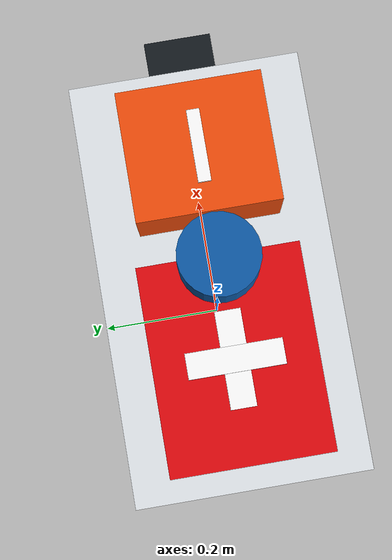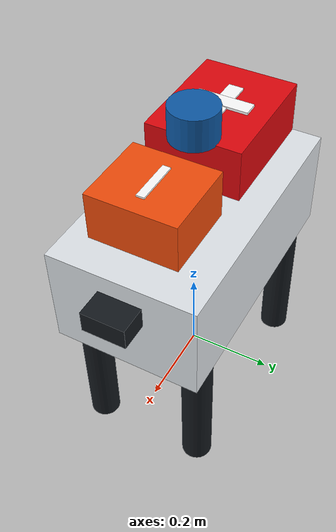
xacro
<?xml version="1.0"?>
<robot xmlns:xacro="http://www.ros.org/wiki/xacro" name="vbot_simple">
  <!-- 按公开的 613×339×569 毫米站立外廓建立近似模型。 -->
  <xacro:property name="body_length" value="0.613"/>
  <xacro:property name="body_width" value="0.339"/>
  <xacro:property name="body_height" value="0.240"/>
  <xacro:property name="body_z" value="0.365"/>

  <material name="vbot_white"><color rgba="0.88 0.90 0.92 1"/></material>
  <material name="vbot_dark"><color rgba="0.08 0.10 0.12 1"/></material>
  <material name="sensor_blue"><color rgba="0.05 0.35 0.65 1"/></material>
  <material name="aed_red"><color rgba="0.88 0.03 0.05 1"/></material>
  <material name="aed_white"><color rgba="1 1 1 1"/></material>
  <material name="emergency_orange"><color rgba="0.95 0.30 0.04 1"/></material>

  <link name="base_footprint"/>
  <joint name="base_joint" type="fixed">
    <parent link="base_footprint"/>
    <child link="base_link"/>
    <origin xyz="0 0 ${body_z}" rpy="0 0 0"/>
  </joint>

  <link name="base_link">
    <inertial>
      <origin xyz="0 0 0"/>
      <mass value="16.0"/>
      <inertia ixx="0.231" ixy="0" ixz="0" iyy="0.577" iyz="0" izz="0.645"/>
    </inertial>
    <visual>
      <geometry><box size="${body_length} ${body_width} ${body_height}"/></geometry>
      <material name="vbot_white"/>
    </visual>
    <collision>
      <geometry><box size="${body_length} ${body_width} ${body_height}"/></geometry>
    </collision>
  </link>

  <xacro:macro name="fixed_leg" params="name x y">
    <link name="${name}_leg">
      <visual>
        <origin xyz="0 0 -0.20"/>
        <geometry><cylinder radius="0.035" length="0.40"/></geometry>
        <material name="vbot_dark"/>
      </visual>
    </link>
    <joint name="${name}_leg_joint" type="fixed">
      <parent link="base_link"/>
      <child link="${name}_leg"/>
      <origin xyz="${x} ${y} -0.06"/>
    </joint>
  </xacro:macro>
  <xacro:fixed_leg name="front_left" x="0.23" y="0.13"/>
  <xacro:fixed_leg name="front_right" x="0.23" y="-0.13"/>
  <xacro:fixed_leg name="rear_left" x="-0.23" y="0.13"/>
  <xacro:fixed_leg name="rear_right" x="-0.23" y="-0.13"/>

  <link name="lidar_link">
    <visual><geometry><cylinder radius="0.055" length="0.075"/></geometry><material name="sensor_blue"/></visual>
    <collision><geometry><cylinder radius="0.055" length="0.075"/></geometry></collision>
  </link>
  <joint name="lidar_joint" type="fixed">
    <!-- 激光雷达高于可拆卸 AED 箱，避免 SLAM 把自带载荷误建成两面纵向墙体。 -->
    <parent link="base_link"/><child link="lidar_link"/><origin xyz="0 0 0.30"/>
  </joint>

  <link name="camera_link">
    <visual><geometry><box size="0.08 0.10 0.05"/></geometry><material name="vbot_dark"/></visual>
  </link>
  <joint name="camera_joint" type="fixed">
    <parent link="base_link"/><child link="camera_link"/><origin xyz="0.33 0 0.05"/>
  </joint>
  <link name="camera_optical_frame"/>
  <joint name="camera_optical_joint" type="fixed">
    <parent link="camera_link"/><child link="camera_optical_frame"/>
    <origin xyz="0.045 0 0" rpy="-1.5708 0 -1.5708"/>
  </joint>

  <link name="imu_link"/>
  <joint name="imu_joint" type="fixed">
    <parent link="base_link"/><child link="imu_link"/><origin xyz="0 0 0"/>
  </joint>

  <!-- 可拆卸 AED 载荷箱，仅使用近似几何体进行仿真。 -->
  <link name="aed_case">
    <inertial>
      <origin xyz="0 0 0"/>
      <mass value="1.8"/>
      <inertia ixx="0.009" ixy="0" ixz="0" iyy="0.014" iyz="0" izz="0.019"/>
    </inertial>
    <visual>
      <geometry><box size="0.28 0.22 0.12"/></geometry>
      <material name="aed_red"/>
    </visual>
    <visual>
      <origin xyz="0 0 0.061"/>
      <geometry><box size="0.13 0.035 0.006"/></geometry>
      <material name="aed_white"/>
    </visual>
    <visual>
      <origin xyz="0 0 0.062"/>
      <geometry><box size="0.035 0.13 0.008"/></geometry>
      <material name="aed_white"/>
    </visual>
    <collision><geometry><box size="0.28 0.22 0.12"/></geometry></collision>
  </link>
  <joint name="aed_carrier_joint" type="fixed">
    <parent link="base_link"/><child link="aed_case"/>
    <origin xyz="-0.13 0 0.205" rpy="0 0 0"/>
  </joint>

  <!-- 封闭式急救物资箱，仅由专业人员或受训人员按医疗要求开启。 -->
  <link name="emergency_supply_case">
    <inertial>
      <origin xyz="0 0 0"/>
      <mass value="1.2"/>
      <inertia ixx="0.005" ixy="0" ixz="0" iyy="0.006" iyz="0" izz="0.008"/>
    </inertial>
    <visual>
      <geometry><box size="0.18 0.20 0.11"/></geometry>
      <material name="emergency_orange"/>
    </visual>
    <visual>
      <origin xyz="0 0 0.056"/>
      <geometry><box size="0.10 0.018 0.006"/></geometry>
      <material name="aed_white"/>
    </visual>
    <collision><geometry><box size="0.18 0.20 0.11"/></geometry></collision>
  </link>
  <joint name="emergency_supply_carrier_joint" type="fixed">
    <parent link="base_link"/><child link="emergency_supply_case"/>
    <origin xyz="0.16 0 0.205" rpy="0 0 0"/>
  </joint>

  <gazebo reference="base_link"><material>Gazebo/White</material></gazebo>
  <gazebo reference="front_left_leg"><material>Gazebo/DarkGrey</material></gazebo>
  <gazebo reference="front_right_leg"><material>Gazebo/DarkGrey</material></gazebo>
  <gazebo reference="rear_left_leg"><material>Gazebo/DarkGrey</material></gazebo>
  <gazebo reference="rear_right_leg"><material>Gazebo/DarkGrey</material></gazebo>
  <gazebo reference="aed_case"><material>Gazebo/Red</material></gazebo>
  <gazebo reference="emergency_supply_case"><material>Gazebo/Orange</material></gazebo>

  <gazebo reference="lidar_link">
    <sensor name="vbot_lidar" type="ray">
      <always_on>true</always_on><update_rate>8</update_rate><visualize>true</visualize>
      <pose>0 0 0 0 0 0</pose>
      <ray>
        <scan><horizontal><samples>360</samples><resolution>1</resolution><min_angle>-3.14159</min_angle><max_angle>3.14159</max_angle></horizontal></scan>
        <range><min>0.12</min><max>15.0</max><resolution>0.01</resolution></range>
        <noise><type>gaussian</type><mean>0.0</mean><stddev>0.006</stddev></noise>
      </ray>
      <plugin name="vbot_laser_plugin" filename="libgazebo_ros_ray_sensor.so">
        <ros><remapping>~/out:=scan</remapping></ros>
        <output_type>sensor_msgs/LaserScan</output_type>
        <frame_name>lidar_link</frame_name>
      </plugin>
    </sensor>
  </gazebo>

  <gazebo reference="imu_link">
    <sensor name="vbot_imu" type="imu">
      <always_on>true</always_on><update_rate>50</update_rate><visualize>false</visualize>
      <plugin name="vbot_imu_plugin" filename="libgazebo_ros_imu_sensor.so">
        <ros><remapping>~/out:=imu/data</remapping></ros>
        <initial_orientation_as_reference>false</initial_orientation_as_reference>
        <frame_name>imu_link</frame_name>
      </plugin>
    </sensor>
  </gazebo>

  <gazebo reference="camera_link">
    <sensor name="vbot_depth_camera" type="depth">
      <always_on>true</always_on><update_rate>5</update_rate><visualize>false</visualize>
      <camera>
        <horizontal_fov>1.10</horizontal_fov>
        <image><width>160</width><height>90</height><format>R8G8B8</format></image>
        <clip><near>0.15</near><far>8.0</far></clip>
      </camera>
      <plugin name="vbot_depth_camera_plugin" filename="libgazebo_ros_camera.so">
        <ros><namespace>/camera</namespace></ros>
        <camera_name>depth</camera_name>
        <frame_name>camera_optical_frame</frame_name>
        <hack_baseline>0.06</hack_baseline>
      </plugin>
    </sensor>
  </gazebo>

  <gazebo>
    <plugin name="vbot_planar_controller" filename="libgazebo_ros_planar_move.so">
      <ros>
        <namespace>/</namespace>
        <remapping>cmd_vel:=vel_cmd</remapping>
      </ros>
      <update_rate>50</update_rate>
      <publish_rate>30</publish_rate>
      <publish_odom>true</publish_odom>
      <publish_odom_tf>true</publish_odom_tf>
      <odometry_frame>odom</odometry_frame>
      <robot_base_frame>base_footprint</robot_base_frame>
      <covariance_x>0.0025</covariance_x>
      <covariance_y>0.0025</covariance_y>
      <covariance_yaw>0.005</covariance_yaw>
    </plugin>
  </gazebo>
</robot>
